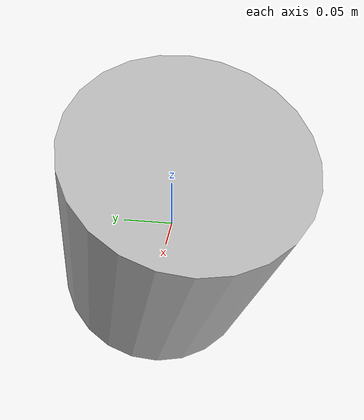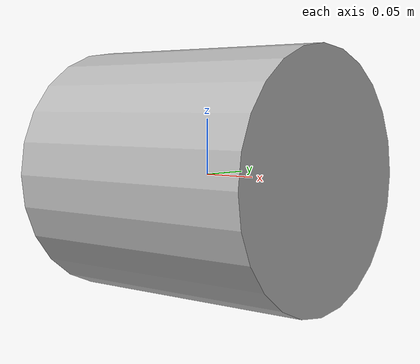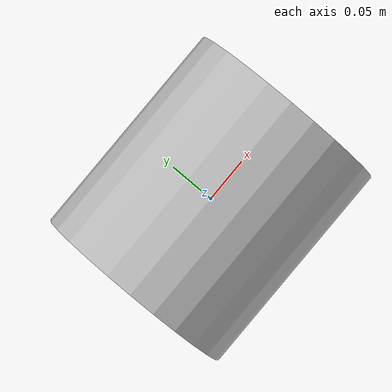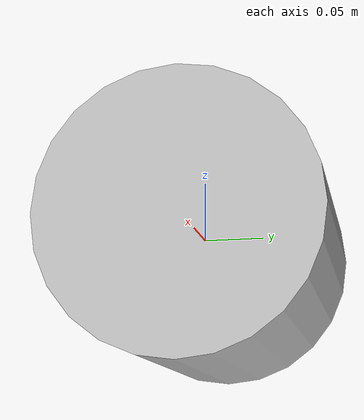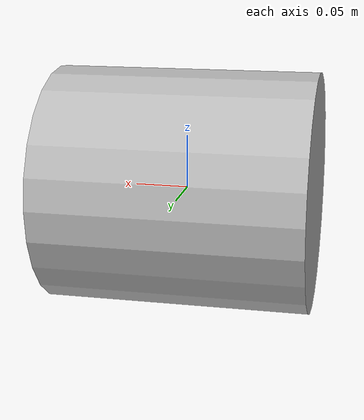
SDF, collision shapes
<?xml version="1.0"?>
<!-- Teledyne Workhorse Navigator (WHN) Doppler Velocity Logger (DVL)
     model using the UUV Simulator DVL plugin. -->
<!-- NOTE: The SDF version of this model is untested. -->
<sdf version="1.6">
    <model name="teledyne_whn_uuvsim">
        <link name="dvl_base_link">
            <pose>0 0 0 0 0 0</pose>
            <inertial>
                <pose>0 0 0 0 0 0</pose>
                <mass>8.8</mass>
                <inertia>
                    <ixx>0.0557865</ixx>
                    <ixy>0</ixy>
                    <ixz>-9.76385e-19</ixz>
                    <iyy>0.0717321</iyy>
                    <iyz>0</iyz>
                    <izz>0.0717321</izz>
                </inertia>
            </inertial>
            <gravity>0</gravity>
            <velocity_decay/>
            <self_collide>0</self_collide>
            <enable_wind>0</enable_wind>
            <kinematic>0</kinematic>
            <visual name="dvl_base_link_visual">
                <pose>0 0 0 0 1.5707963267948966 0</pose>
                <geometry>
                    <mesh>
                        <scale>1 1 1</scale>
                        <uri>https://fuel.gazebosim.org/1.0/hmoyen/models/teledyne_whn_uuvsim_bare_model/1/files/meshes/WorkhorseNavigator.dae</uri>
                    </mesh>
                </geometry>
            </visual>
            <collision name="dvl_base_link_collision">
                <pose>0 0 0 0 1.5707963267948966 0</pose>
                <geometry>
                    <cylinder>
                        <radius>0.1126</radius>
                        <length>0.2445</length>
                    </cylinder>
                </geometry>
            </collision>
        </link>
        <!-- Single sonar link 0 -->
        <link name="dvl_sonar0_link">
            <pose>0 0 0 0 1.0508 0</pose>
            <inertial>
                <pose>0 0 0 0 0 0</pose>
                <mass>0.001</mass>
                <inertia>
                    <ixx>1.7e-08</ixx>
                    <ixy>0</ixy>
                    <ixz>0</ixz>
                    <iyy>1.7e-08</iyy>
                    <iyz>0</iyz>
                    <izz>1.7e-08</izz>
                </inertia>
            </inertial>
            <collision name="sonar0_collision">
                <pose>0 0 0 0 0 0</pose>
                <geometry>
                    <cylinder>
                        <radius>0.000001</radius>
                        <length>0.000001</length>
                    </cylinder>
                </geometry>
            </collision>
            <gravity>0</gravity>
            <sensor name="dvl_sonar0" type="ray">
                <pose>0 0 0 0 0 0</pose>
                <update_rate>7</update_rate>
                <visualize>1</visualize>
                <ray>
                    <scan>
                        <horizontal>
                            <samples>3</samples>
                            <resolution>1</resolution>
                            <min_angle>-0.03</min_angle>
                            <max_angle>0.03</max_angle>
                        </horizontal>
                        <vertical>
                            <samples>3</samples>
                            <resolution>1</resolution>
                            <min_angle>-0.03</min_angle>
                            <max_angle>0.03</max_angle>
                        </vertical>
                    </scan>
                    <range>
                        <min>0.7</min>
                        <max>90</max>
                        <resolution>0.01</resolution>
                    </range>
                </ray>
            </sensor>
        </link>
        <joint name="dvl_sonar0_joint" type="revolute">
            <parent>dvl_base_link</parent>
            <child>dvl_sonar0_link</child>
            <pose>0 0 0 0 0 0</pose>
            <axis>
                <xyz>0.49688 0 -0.867819</xyz>
                <use_parent_model_frame>1</use_parent_model_frame>
                <limit>
                    <lower>0</lower>
                    <upper>0</upper>
                    <effort>0</effort>
                    <velocity>0</velocity>
                </limit>
            </axis>
        </joint>
        <!-- Single sonar link 1 -->
        <link name="dvl_sonar1_link">
            <pose>0 0 0 1.5708 1.0508 1.5708</pose>
            <inertial>
                <pose>0 0 0 0 0 0</pose>
                <mass>0.001</mass>
                <inertia>
                    <ixx>1.7e-08</ixx>
                    <ixy>0</ixy>
                    <ixz>0</ixz>
                    <iyy>1.7e-08</iyy>
                    <iyz>0</iyz>
                    <izz>1.7e-08</izz>
                </inertia>
            </inertial>
            <collision name="sonar1_collision">
                <pose>0 0 0 0 0 0</pose>
                <geometry>
                    <cylinder>
                        <radius>0.000001</radius>
                        <length>0.000001</length>
                    </cylinder>
                </geometry>
            </collision>
            <gravity>0</gravity>
            <sensor name="dvl_sonar1" type="ray">
                <pose>0 0 0 0 0 0</pose>
                <update_rate>7</update_rate>
                <visualize>1</visualize>
                <ray>
                    <scan>
                        <horizontal>
                            <samples>3</samples>
                            <resolution>1</resolution>
                            <min_angle>-0.03</min_angle>
                            <max_angle>0.03</max_angle>
                        </horizontal>
                        <vertical>
                            <samples>3</samples>
                            <resolution>1</resolution>
                            <min_angle>-0.03</min_angle>
                            <max_angle>0.03</max_angle>
                        </vertical>
                    </scan>
                    <range>
                        <min>0.7</min>
                        <max>90</max>
                        <resolution>0.01</resolution>
                    </range>
                </ray>
            </sensor>
        </link>
        <joint name="dvl_sonar1_joint" type="revolute">
            <parent>dvl_base_link</parent>
            <child>dvl_sonar1_link</child>
            <pose>0 0 0 0 0 0</pose>
            <axis>
                <xyz>0 0.49688 -0.867819</xyz>
                <use_parent_model_frame>1</use_parent_model_frame>
                <limit>
                    <lower>0</lower>
                    <upper>0</upper>
                    <effort>0</effort>
                    <velocity>0</velocity>
                </limit>
            </axis>
        </joint>
        <!-- Single sonar link 2 -->
        <link name="dvl_sonar2_link">
            <pose>0 0 0 3.14159 1.0508 3.14159</pose>
            <inertial>
                <pose>0 0 0 0 0 0</pose>
                <mass>0.001</mass>
                <inertia>
                    <ixx>1.7e-08</ixx>
                    <ixy>0</ixy>
                    <ixz>0</ixz>
                    <iyy>1.7e-08</iyy>
                    <iyz>0</iyz>
                    <izz>1.7e-08</izz>
                </inertia>
            </inertial>
            <collision name="sonar2_collision">
                <pose>0 0 0 0 0 0</pose>
                <geometry>
                    <cylinder>
                        <radius>0.000001</radius>
                        <length>0.000001</length>
                    </cylinder>
                </geometry>
            </collision>
            <gravity>0</gravity>
            <sensor name="dvl_sonar2" type="ray">
                <pose>0 0 0 0 0 0</pose>
                <update_rate>7</update_rate>
                <visualize>1</visualize>
                <ray>
                    <scan>
                        <horizontal>
                            <samples>3</samples>
                            <resolution>1</resolution>
                            <min_angle>-0.03</min_angle>
                            <max_angle>0.03</max_angle>
                        </horizontal>
                        <vertical>
                            <samples>3</samples>
                            <resolution>1</resolution>
                            <min_angle>-0.03</min_angle>
                            <max_angle>0.03</max_angle>
                        </vertical>
                    </scan>
                    <range>
                        <min>0.7</min>
                        <max>90</max>
                        <resolution>0.01</resolution>
                    </range>
                </ray>
            </sensor>
        </link>
        <joint name="dvl_sonar2_joint" type="revolute">
            <parent>dvl_base_link</parent>
            <child>dvl_sonar2_link</child>
            <pose>0 0 0 0 0 0</pose>
            <axis>
                <xyz>-0.49688 0 -0.867819</xyz>
                <use_parent_model_frame>1</use_parent_model_frame>
                <limit>
                    <lower>0</lower>
                    <upper>0</upper>
                    <effort>0</effort>
                    <velocity>0</velocity>
                </limit>
            </axis>
        </joint>
        <!-- Single sonar link 3 -->
        <link name="dvl_sonar3_link">
            <pose>0 0 0 -1.5708 1.0508 -1.5708</pose>
            <inertial>
                <pose>0 0 0 0 0 0</pose>
                <mass>0.001</mass>
                <inertia>
                    <ixx>1.7e-08</ixx>
                    <ixy>0</ixy>
                    <ixz>0</ixz>
                    <iyy>1.7e-08</iyy>
                    <iyz>0</iyz>
                    <izz>1.7e-08</izz>
                </inertia>
            </inertial>
            <collision name="sonar3_collision">
                <pose>0 0 0 0 0 0</pose>
                <geometry>
                    <cylinder>
                        <radius>0.000001</radius>
                        <length>0.000001</length>
                    </cylinder>
                </geometry>
            </collision>
            <gravity>0</gravity>
            <sensor name="dvl_sonar3" type="ray">
                <pose>0 0 0 0 0 0</pose>
                <update_rate>7</update_rate>
                <visualize>1</visualize>
                <ray>
                    <scan>
                        <horizontal>
                            <samples>3</samples>
                            <resolution>1</resolution>
                            <min_angle>-0.03</min_angle>
                            <max_angle>0.03</max_angle>
                        </horizontal>
                        <vertical>
                            <samples>3</samples>
                            <resolution>1</resolution>
                            <min_angle>-0.03</min_angle>
                            <max_angle>0.03</max_angle>
                        </vertical>
                    </scan>
                    <range>
                        <min>0.7</min>
                        <max>90</max>
                        <resolution>0.01</resolution>
                    </range>
                </ray>
            </sensor>
        </link>
        <joint name="dvl_sonar3_joint" type="revolute">
            <parent>dvl_base_link</parent>
            <child>dvl_sonar3_link</child>
            <pose>0 0 0 0 0 0</pose>
            <axis>
                <xyz>0 -0.49688 -0.867819</xyz>
                <use_parent_model_frame>1</use_parent_model_frame>
                <limit>
                    <lower>0</lower>
                    <upper>0</upper>
                    <effort>0</effort>
                    <velocity>0</velocity>
                </limit>
            </axis>
        </joint>
        <static>0</static>
        <allow_auto_disable>1</allow_auto_disable>
    </model>
</sdf>
